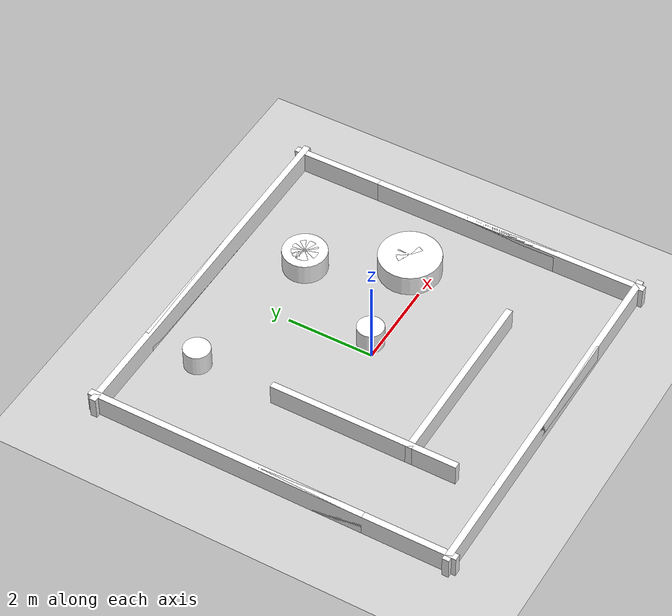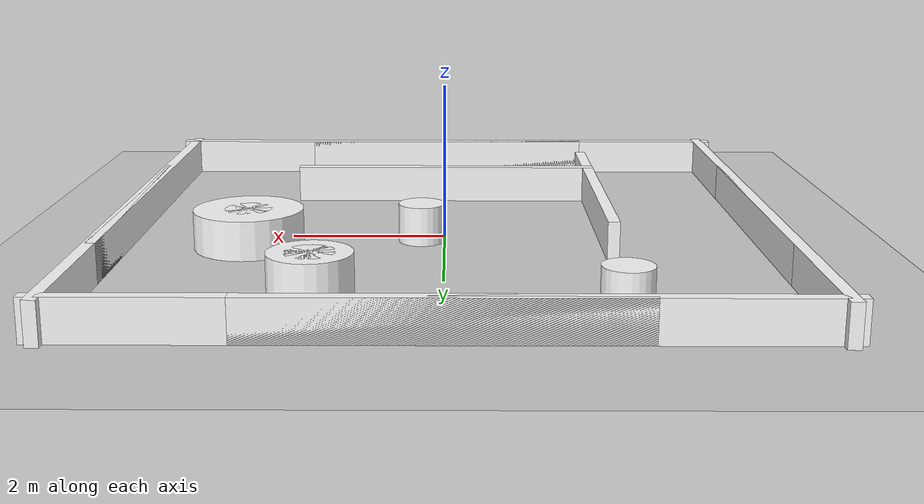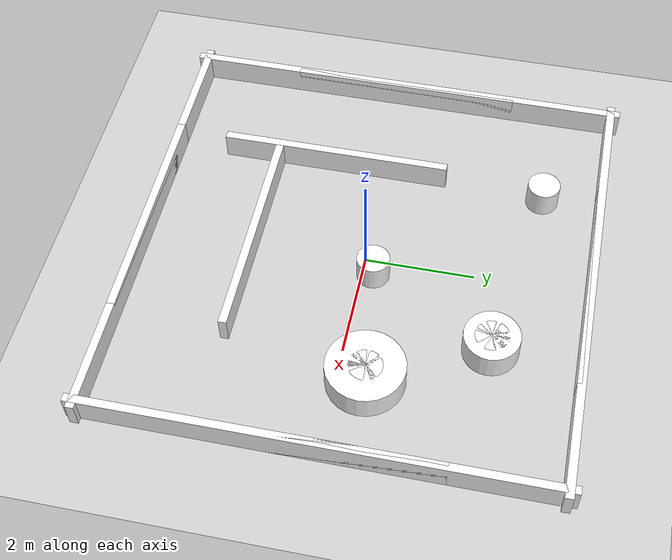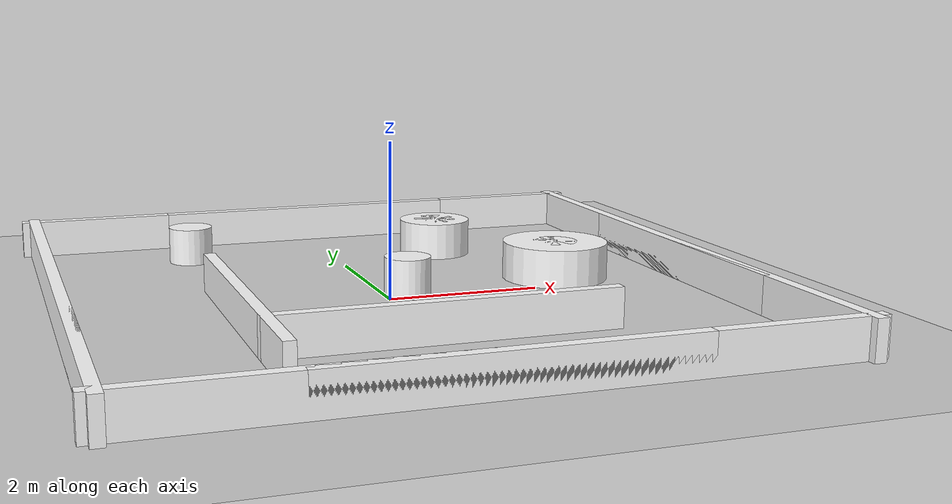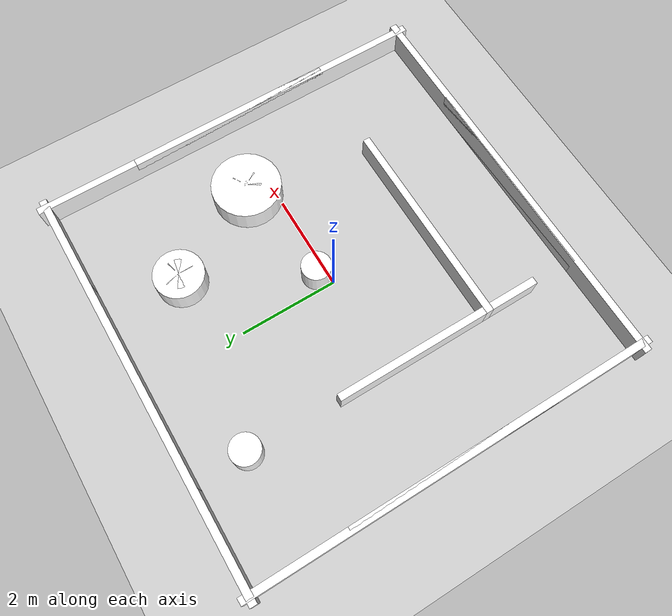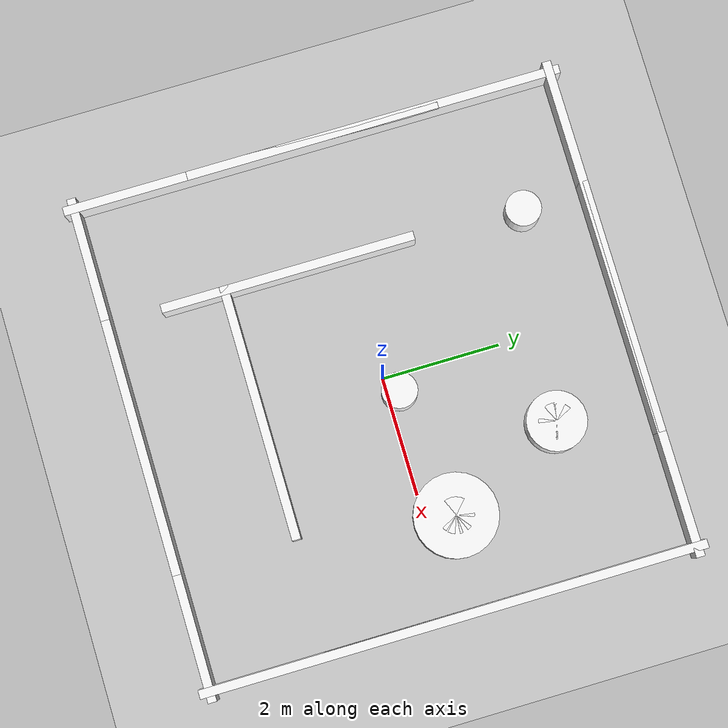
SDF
<sdf version='1.6'>
  <world name='default'>
    <!-- A global light source -->
    <include>
      <uri>model://sun</uri>
    </include>

    <!-- A ground plane -->
    <include>
      <uri>model://ground_plane</uri>
    </include>

    <physics type="ode">
      <real_time_update_rate>100.0</real_time_update_rate>
      <max_step_size>0.01</max_step_size>
      <real_time_factor>0.5</real_time_factor>
      <ode>
        <solver>
          <type>quick</type>
          <iters>150</iters>
          <precon_iters>0</precon_iters>
          <sor>1.400000</sor>
          <use_dynamic_moi_rescaling>1</use_dynamic_moi_rescaling>
        </solver>
        <constraints>
          <cfm>0.00001</cfm>
          <erp>0.2</erp>
          <contact_max_correcting_vel>2000.000000</contact_max_correcting_vel>
          <contact_surface_layer>0.01000</contact_surface_layer>
        </constraints>
      </ode>
    </physics>

    <!-- Load world -->
    <include>
      <uri>model://medium</uri>
    </include>

    <scene>
      <ambient>0.4 0.4 0.4 1</ambient>
      <background>0.7 0.7 0.7 1</background>
      <shadows>false</shadows>
    </scene>

    <gui fullscreen='0'>
      <camera name='user_camera'>
        <pose>0.8 0.0 12.0 0 1.5708 0</pose>
        <view_controller>orbit</view_controller>
      </camera>
    </gui>
  </world>
</sdf>

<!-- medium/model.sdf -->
<sdf version='1.6'>
  <model name='medium'>
    <link name='fixed'>
      <pose frame=''>0 0 0 0 -0 0</pose>
      <self_collide>0</self_collide>
      <kinematic>0</kinematic>
    </link>
    <link name='Cylinder_1'>
      <pose frame=''>0.3 0.2 0 0 -0 0</pose>
      <self_collide>0</self_collide>
      <kinematic>0</kinematic>
      <visual name='Cylinder_1_Visual'>
        <pose frame=''>0 0 0.25 0 -0 0</pose>
        <geometry>
          <cylinder>
            <radius>0.3</radius>
            <length>0.5</length>
          </cylinder>
        </geometry>
        <material>
          <ambient>1 1 1 1</ambient>
          <diffuse>1 1 1 1</diffuse>
          <specular>0 0 0 1</specular>
          <emissive>0 0 0 1</emissive>
          <script>
            <name>ModelPreview_1::Cylinder_1::Cylinder_1_Visual_MATERIAL_</name>
            <uri>__default__</uri>
          </script>
        </material>
        <cast_shadows>1</cast_shadows>
        <transparency>0</transparency>
      </visual>
      <collision name='Cylinder_1_Collision'>
        <laser_retro>0</laser_retro>
        <max_contacts>10</max_contacts>
        <pose frame=''>0 0 0.25 0 -0 0</pose>
        <geometry>
          <cylinder>
            <radius>0.3</radius>
            <length>0.5</length>
          </cylinder>
        </geometry>
        <surface>
          <friction>
            <ode>
              <mu>1</mu>
              <mu2>1</mu2>
              <fdir1>0 0 0</fdir1>
              <slip1>0</slip1>
              <slip2>0</slip2>
            </ode>
            <torsional>
              <coefficient>1</coefficient>
              <patch_radius>0</patch_radius>
              <surface_radius>0</surface_radius>
              <use_patch_radius>1</use_patch_radius>
              <ode>
                <slip>0</slip>
              </ode>
            </torsional>
          </friction>
          <bounce>
            <restitution_coefficient>0</restitution_coefficient>
            <threshold>1e+06</threshold>
          </bounce>
          <contact>
            <collide_without_contact>0</collide_without_contact>
            <collide_without_contact_bitmask>1</collide_without_contact_bitmask>
            <collide_bitmask>1</collide_bitmask>
            <ode>
              <soft_cfm>0</soft_cfm>
              <soft_erp>0.2</soft_erp>
              <kp>1e+13</kp>
              <kd>1</kd>
              <max_vel>0.01</max_vel>
              <min_depth>0</min_depth>
            </ode>
            <bullet>
              <split_impulse>1</split_impulse>
              <split_impulse_penetration_threshold>-0.01</split_impulse_penetration_threshold>
              <soft_cfm>0</soft_cfm>
              <soft_erp>0.2</soft_erp>
              <kp>1e+13</kp>
              <kd>1</kd>
            </bullet>
          </contact>
        </surface>
      </collision>
    </link>
    <link name='Cylinder_1_clone'>
      <pose frame=''>2.5 0.5 0 0 -0 0</pose>
      <self_collide>0</self_collide>
      <kinematic>0</kinematic>
      <gravity>1</gravity>
      <inertial>
        <mass>1</mass>
        <pose frame=''>0 0 0 0 -0 0</pose>
        <inertia>
          <ixx>1</ixx>
          <ixy>0</ixy>
          <ixz>0</ixz>
          <iyy>1</iyy>
          <iyz>0</iyz>
          <izz>1</izz>
        </inertia>
      </inertial>
      <visual name='Cylinder_1_Visual'>
        <pose frame=''>0 0 0.25 0 -0 0</pose>
        <geometry>
          <cylinder>
            <radius>0.7</radius>
            <length>0.5</length>
          </cylinder>
        </geometry>
        <material>
          <ambient>1 1 1 1</ambient>
          <diffuse>1 1 1 1</diffuse>
          <specular>0 0 0 1</specular>
          <emissive>0 0 0 1</emissive>
          <script>
            <name>ModelPreview_1::Cylinder_1::Cylinder_1_Visual_MATERIAL_</name>
            <uri>__default__</uri>
          </script>
          <shader type='pixel'>
            <normal_map>__default__</normal_map>
          </shader>
        </material>
        <cast_shadows>1</cast_shadows>
        <transparency>0</transparency>
      </visual>
      <visual name='ModelPreview_1::Cylinder_1_clone::visual_1'>
        <pose frame=''>0 0 0.25 0 -0 0</pose>
        <geometry>
          <cylinder>
            <radius>0.3</radius>
            <length>0.5</length>
          </cylinder>
        </geometry>
        <material>
          <ambient>1 1 1 1</ambient>
          <diffuse>1 1 1 1</diffuse>
          <specular>0 0 0 1</specular>
          <emissive>0 0 0 1</emissive>
          <script>
            <name>ModelPreview_1::Cylinder_1::Cylinder_1_Visual_MATERIAL_</name>
            <uri>__default__</uri>
          </script>
          <shader type='pixel'>
            <normal_map>__default__</normal_map>
          </shader>
        </material>
        <cast_shadows>1</cast_shadows>
        <transparency>0</transparency>
      </visual>
      <collision name='Cylinder_1_Collision'>
        <laser_retro>0</laser_retro>
        <max_contacts>10</max_contacts>
        <pose frame=''>0 0 0.25 0 -0 0</pose>
        <geometry>
          <cylinder>
            <radius>0.7</radius>
            <length>0.5</length>
          </cylinder>
        </geometry>
        <surface>
          <friction>
            <ode>
              <mu>1</mu>
              <mu2>1</mu2>
              <fdir1>0 0 0</fdir1>
              <slip1>0</slip1>
              <slip2>0</slip2>
            </ode>
            <torsional>
              <coefficient>1</coefficient>
              <patch_radius>0</patch_radius>
              <surface_radius>0</surface_radius>
              <use_patch_radius>1</use_patch_radius>
              <ode>
                <slip>0</slip>
              </ode>
            </torsional>
          </friction>
          <bounce>
            <restitution_coefficient>0</restitution_coefficient>
            <threshold>1e+06</threshold>
          </bounce>
          <contact>
            <collide_without_contact>0</collide_without_contact>
            <collide_without_contact_bitmask>1</collide_without_contact_bitmask>
            <collide_bitmask>1</collide_bitmask>
            <ode>
              <soft_cfm>0</soft_cfm>
              <soft_erp>0.2</soft_erp>
              <kp>1e+13</kp>
              <kd>1</kd>
              <max_vel>0.01</max_vel>
              <min_depth>0</min_depth>
            </ode>
            <bullet>
              <split_impulse>1</split_impulse>
              <split_impulse_penetration_threshold>-0.01</split_impulse_penetration_threshold>
              <soft_cfm>0</soft_cfm>
              <soft_erp>0.2</soft_erp>
              <kp>1e+13</kp>
              <kd>1</kd>
            </bullet>
          </contact>
        </surface>
      </collision>
    </link>
    <link name='Cylinder_1_clone_0'>
      <pose frame=''>1.5 2.5 0 0 -0 0</pose>
      <self_collide>0</self_collide>
      <kinematic>0</kinematic>
      <gravity>1</gravity>
      <inertial>
        <mass>1</mass>
        <pose frame=''>0 0 0 0 -0 0</pose>
        <inertia>
          <ixx>1</ixx>
          <ixy>0</ixy>
          <ixz>0</ixz>
          <iyy>1</iyy>
          <iyz>0</iyz>
          <izz>1</izz>
        </inertia>
      </inertial>
      <visual name='Cylinder_1_Visual'>
        <pose frame=''>0 0 0.25 0 -0 0</pose>
        <geometry>
          <cylinder>
            <radius>0.5</radius>
            <length>0.5</length>
          </cylinder>
        </geometry>
        <material>
          <ambient>1 1 1 1</ambient>
          <diffuse>1 1 1 1</diffuse>
          <specular>0 0 0 1</specular>
          <emissive>0 0 0 1</emissive>
          <script>
            <name>ModelPreview_1::Cylinder_1::Cylinder_1_Visual_MATERIAL_</name>
            <uri>__default__</uri>
          </script>
          <shader type='pixel'>
            <normal_map>__default__</normal_map>
          </shader>
        </material>
        <cast_shadows>1</cast_shadows>
        <transparency>0</transparency>
      </visual>
      <visual name='ModelPreview_1::Cylinder_1_clone_0::visual_1'>
        <pose frame=''>0 0 0.25 0 -0 0</pose>
        <geometry>
          <cylinder>
            <radius>0.3</radius>
            <length>0.5</length>
          </cylinder>
        </geometry>
        <material>
          <ambient>1 1 1 1</ambient>
          <diffuse>1 1 1 1</diffuse>
          <specular>0 0 0 1</specular>
          <emissive>0 0 0 1</emissive>
          <script>
            <name>ModelPreview_1::Cylinder_1::Cylinder_1_Visual_MATERIAL_</name>
            <uri>__default__</uri>
          </script>
          <shader type='pixel'>
            <normal_map>__default__</normal_map>
          </shader>
        </material>
        <cast_shadows>1</cast_shadows>
        <transparency>0</transparency>
      </visual>
      <collision name='Cylinder_1_Collision'>
        <laser_retro>0</laser_retro>
        <max_contacts>10</max_contacts>
        <pose frame=''>0 0 0.25 0 -0 0</pose>
        <geometry>
          <cylinder>
            <radius>0.5</radius>
            <length>0.5</length>
          </cylinder>
        </geometry>
        <surface>
          <friction>
            <ode>
              <mu>1</mu>
              <mu2>1</mu2>
              <fdir1>0 0 0</fdir1>
              <slip1>0</slip1>
              <slip2>0</slip2>
            </ode>
            <torsional>
              <coefficient>1</coefficient>
              <patch_radius>0</patch_radius>
              <surface_radius>0</surface_radius>
              <use_patch_radius>1</use_patch_radius>
              <ode>
                <slip>0</slip>
              </ode>
            </torsional>
          </friction>
          <bounce>
            <restitution_coefficient>0</restitution_coefficient>
            <threshold>1e+06</threshold>
          </bounce>
          <contact>
            <collide_without_contact>0</collide_without_contact>
            <collide_without_contact_bitmask>1</collide_without_contact_bitmask>
            <collide_bitmask>1</collide_bitmask>
            <ode>
              <soft_cfm>0</soft_cfm>
              <soft_erp>0.2</soft_erp>
              <kp>1e+13</kp>
              <kd>1</kd>
              <max_vel>0.01</max_vel>
              <min_depth>0</min_depth>
            </ode>
            <bullet>
              <split_impulse>1</split_impulse>
              <split_impulse_penetration_threshold>-0.01</split_impulse_penetration_threshold>
              <soft_cfm>0</soft_cfm>
              <soft_erp>0.2</soft_erp>
              <kp>1e+13</kp>
              <kd>1</kd>
            </bullet>
          </contact>
        </surface>
      </collision>
    </link>
    <link name='Cylinder_1_clone_0_clone'>
      <pose frame=''>-2 3 0 0 -0 0</pose>
      <self_collide>0</self_collide>
      <kinematic>0</kinematic>
      <visual name='Cylinder_1_Visual'>
        <pose frame=''>0 0 0.25 0 -0 0</pose>
        <geometry>
          <cylinder>
            <radius>0.3</radius>
            <length>0.5</length>
          </cylinder>
        </geometry>
        <material>
          <ambient>1 1 1 1</ambient>
          <diffuse>1 1 1 1</diffuse>
          <specular>0 0 0 1</specular>
          <emissive>0 0 0 1</emissive>
          <script>
            <name>ModelPreview_1::Cylinder_1::Cylinder_1_Visual_MATERIAL_</name>
            <uri>__default__</uri>
          </script>
          <shader type='pixel'/>
        </material>
        <cast_shadows>1</cast_shadows>
        <transparency>0</transparency>
      </visual>
      <collision name='Cylinder_1_Collision'>
        <laser_retro>0</laser_retro>
        <max_contacts>10</max_contacts>
        <pose frame=''>0 0 0.25 0 -0 0</pose>
        <geometry>
          <cylinder>
            <radius>0.3</radius>
            <length>0.5</length>
          </cylinder>
        </geometry>
        <surface>
          <friction>
            <ode>
              <mu>1</mu>
              <mu2>1</mu2>
              <fdir1>0 0 0</fdir1>
              <slip1>0</slip1>
              <slip2>0</slip2>
            </ode>
            <torsional>
              <coefficient>1</coefficient>
              <patch_radius>0</patch_radius>
              <surface_radius>0</surface_radius>
              <use_patch_radius>1</use_patch_radius>
              <ode>
                <slip>0</slip>
              </ode>
            </torsional>
          </friction>
          <bounce>
            <restitution_coefficient>0</restitution_coefficient>
            <threshold>1e+06</threshold>
          </bounce>
          <contact>
            <collide_without_contact>0</collide_without_contact>
            <collide_without_contact_bitmask>1</collide_without_contact_bitmask>
            <collide_bitmask>1</collide_bitmask>
            <ode>
              <soft_cfm>0</soft_cfm>
              <soft_erp>0.2</soft_erp>
              <kp>1e+13</kp>
              <kd>1</kd>
              <max_vel>0.01</max_vel>
              <min_depth>0</min_depth>
            </ode>
            <bullet>
              <split_impulse>1</split_impulse>
              <split_impulse_penetration_threshold>-0.01</split_impulse_penetration_threshold>
              <soft_cfm>0</soft_cfm>
              <soft_erp>0.2</soft_erp>
              <kp>1e+13</kp>
              <kd>1</kd>
            </bullet>
          </contact>
        </surface>
      </collision>
    </link>
    <link name='Wall_0_clone'>
      <pose frame=''>0 4.075 0 0 -0 0</pose>
      <self_collide>0</self_collide>
      <kinematic>0</kinematic>
      <gravity>1</gravity>
      <inertial>
        <mass>1</mass>
        <pose frame=''>0 0 0 0 -0 0</pose>
        <inertia>
          <ixx>1</ixx>
          <ixy>0</ixy>
          <ixz>0</ixz>
          <iyy>1</iyy>
          <iyz>0</iyz>
          <izz>1</izz>
        </inertia>
      </inertial>
      <visual name='ModelPreview_1::Wall_0_clone::visual_1'>
        <pose frame=''>0 0 0.25 0 -0 0</pose>
        <geometry>
          <box>
            <size>4.3 0.15 0.5</size>
          </box>
        </geometry>
        <material>
          <ambient>1 1 1 1</ambient>
          <diffuse>1 1 1 1</diffuse>
          <specular>0 0 0 1</specular>
          <emissive>0 0 0 1</emissive>
          <script>
            <name>ModelPreview_1::Wall_0::Wall_0_Visual_MATERIAL_</name>
            <uri>__default__</uri>
          </script>
          <shader type='pixel'>
            <normal_map>__default__</normal_map>
          </shader>
        </material>
        <cast_shadows>1</cast_shadows>
        <transparency>0</transparency>
      </visual>
      <visual name='Wall_0_Visual'>
        <pose frame=''>0 0 0.25 0 -0 0</pose>
        <geometry>
          <box>
            <size>8.5 0.15 0.5</size>
          </box>
        </geometry>
        <material>
          <ambient>1 1 1 1</ambient>
          <diffuse>1 1 1 1</diffuse>
          <specular>0 0 0 1</specular>
          <emissive>0 0 0 1</emissive>
          <script>
            <name>ModelPreview_1::Wall_0::Wall_0_Visual_MATERIAL_</name>
            <uri>__default__</uri>
          </script>
          <shader type='pixel'>
            <normal_map>__default__</normal_map>
          </shader>
        </material>
        <cast_shadows>1</cast_shadows>
        <transparency>0</transparency>
      </visual>
      <collision name='Wall_0_Collision'>
        <laser_retro>0</laser_retro>
        <max_contacts>10</max_contacts>
        <pose frame=''>0 0 0.25 0 -0 0</pose>
        <geometry>
          <box>
            <size>8.5 0.15 0.5</size>
          </box>
        </geometry>
        <surface>
          <friction>
            <ode>
              <mu>1</mu>
              <mu2>1</mu2>
              <fdir1>0 0 0</fdir1>
              <slip1>0</slip1>
              <slip2>0</slip2>
            </ode>
            <torsional>
              <coefficient>1</coefficient>
              <patch_radius>0</patch_radius>
              <surface_radius>0</surface_radius>
              <use_patch_radius>1</use_patch_radius>
              <ode>
                <slip>0</slip>
              </ode>
            </torsional>
          </friction>
          <bounce>
            <restitution_coefficient>0</restitution_coefficient>
            <threshold>1e+06</threshold>
          </bounce>
          <contact>
            <collide_without_contact>0</collide_without_contact>
            <collide_without_contact_bitmask>1</collide_without_contact_bitmask>
            <collide_bitmask>1</collide_bitmask>
            <ode>
              <soft_cfm>0</soft_cfm>
              <soft_erp>0.2</soft_erp>
              <kp>1e+13</kp>
              <kd>1</kd>
              <max_vel>0.01</max_vel>
              <min_depth>0</min_depth>
            </ode>
            <bullet>
              <split_impulse>1</split_impulse>
              <split_impulse_penetration_threshold>-0.01</split_impulse_penetration_threshold>
              <soft_cfm>0</soft_cfm>
              <soft_erp>0.2</soft_erp>
              <kp>1e+13</kp>
              <kd>1</kd>
            </bullet>
          </contact>
        </surface>
      </collision>
    </link>
    <link name='Wall_2'>
      <pose frame=''>-4.075 0 0 0 0 -1.5708</pose>
      <self_collide>0</self_collide>
      <kinematic>0</kinematic>
      <gravity>1</gravity>
      <inertial>
        <mass>1</mass>
        <pose frame=''>0 0 0 0 -0 0</pose>
        <inertia>
          <ixx>1</ixx>
          <ixy>0</ixy>
          <ixz>0</ixz>
          <iyy>1</iyy>
          <iyz>0</iyz>
          <izz>1</izz>
        </inertia>
      </inertial>
      <visual name='Wall_2_Visual'>
        <pose frame=''>0 0 0.25 0 -0 0</pose>
        <geometry>
          <box>
            <size>8.5 0.15 0.5</size>
          </box>
        </geometry>
        <material>
          <ambient>1 1 1 1</ambient>
          <diffuse>1 1 1 1</diffuse>
          <specular>0 0 0 1</specular>
          <emissive>0 0 0 1</emissive>
          <script>
            <name>ModelPreview_1::Wall_2::Wall_2_Visual_MATERIAL_</name>
            <uri>__default__</uri>
          </script>
          <shader type='vertex'>
            <normal_map>__default__</normal_map>
          </shader>
        </material>
        <cast_shadows>1</cast_shadows>
        <transparency>0</transparency>
      </visual>
      <visual name='ModelPreview_1::Wall_2::visual_1'>
        <pose frame=''>0 0 0.25 0 -0 0</pose>
        <geometry>
          <box>
            <size>4.3 0.15 0.5</size>
          </box>
        </geometry>
        <material>
          <ambient>1 1 1 1</ambient>
          <diffuse>1 1 1 1</diffuse>
          <specular>0 0 0 1</specular>
          <emissive>0 0 0 1</emissive>
          <script>
            <name>ModelPreview_1::Wall_2::Wall_2_Visual_MATERIAL_</name>
            <uri>__default__</uri>
          </script>
          <shader type='vertex'>
            <normal_map>__default__</normal_map>
          </shader>
        </material>
        <cast_shadows>1</cast_shadows>
        <transparency>0</transparency>
      </visual>
      <collision name='Wall_2_Collision'>
        <laser_retro>0</laser_retro>
        <max_contacts>10</max_contacts>
        <pose frame=''>0 0 0.25 0 -0 0</pose>
        <geometry>
          <box>
            <size>8.5 0.15 0.5</size>
          </box>
        </geometry>
        <surface>
          <friction>
            <ode>
              <mu>1</mu>
              <mu2>1</mu2>
              <fdir1>0 0 0</fdir1>
              <slip1>0</slip1>
              <slip2>0</slip2>
            </ode>
            <torsional>
              <coefficient>1</coefficient>
              <patch_radius>0</patch_radius>
              <surface_radius>0</surface_radius>
              <use_patch_radius>1</use_patch_radius>
              <ode>
                <slip>0</slip>
              </ode>
            </torsional>
          </friction>
          <bounce>
            <restitution_coefficient>0</restitution_coefficient>
            <threshold>1e+06</threshold>
          </bounce>
          <contact>
            <collide_without_contact>0</collide_without_contact>
            <collide_without_contact_bitmask>1</collide_without_contact_bitmask>
            <collide_bitmask>1</collide_bitmask>
            <ode>
              <soft_cfm>0</soft_cfm>
              <soft_erp>0.2</soft_erp>
              <kp>1e+13</kp>
              <kd>1</kd>
              <max_vel>0.01</max_vel>
              <min_depth>0</min_depth>
            </ode>
            <bullet>
              <split_impulse>1</split_impulse>
              <split_impulse_penetration_threshold>-0.01</split_impulse_penetration_threshold>
              <soft_cfm>0</soft_cfm>
              <soft_erp>0.2</soft_erp>
              <kp>1e+13</kp>
              <kd>1</kd>
            </bullet>
          </contact>
        </surface>
      </collision>
    </link>
    <link name='Wall_3'>
      <pose frame=''>0 -2.075 0 0 -0 0</pose>
      <self_collide>0</self_collide>
      <kinematic>0</kinematic>
      <gravity>1</gravity>
      <inertial>
        <mass>1</mass>
        <pose frame=''>0 0 0 0 -0 0</pose>
        <inertia>
          <ixx>1</ixx>
          <ixy>0</ixy>
          <ixz>0</ixz>
          <iyy>1</iyy>
          <iyz>0</iyz>
          <izz>1</izz>
        </inertia>
      </inertial>
      <visual name='Wall_3_Visual'>
        <pose frame=''>0 0 0.25 0 -0 0</pose>
        <geometry>
          <box>
            <size>4.3 0.15 0.5</size>
          </box>
        </geometry>
        <material>
          <ambient>1 1 1 1</ambient>
          <diffuse>1 1 1 1</diffuse>
          <specular>0 0 0 1</specular>
          <emissive>0 0 0 1</emissive>
          <script>
            <name>ModelPreview_1::Wall_3::Wall_3_Visual_MATERIAL_</name>
            <uri>__default__</uri>
          </script>
          <shader type='vertex'>
            <normal_map>__default__</normal_map>
          </shader>
        </material>
        <cast_shadows>1</cast_shadows>
        <transparency>0</transparency>
      </visual>
      <collision name='Wall_3_Collision'>
        <laser_retro>0</laser_retro>
        <max_contacts>10</max_contacts>
        <pose frame=''>0 0 0.25 0 -0 0</pose>
        <geometry>
          <box>
            <size>4.3 0.15 0.5</size>
          </box>
        </geometry>
        <surface>
          <friction>
            <ode>
              <mu>1</mu>
              <mu2>1</mu2>
              <fdir1>0 0 0</fdir1>
              <slip1>0</slip1>
              <slip2>0</slip2>
            </ode>
            <torsional>
              <coefficient>1</coefficient>
              <patch_radius>0</patch_radius>
              <surface_radius>0</surface_radius>
              <use_patch_radius>1</use_patch_radius>
              <ode>
                <slip>0</slip>
              </ode>
            </torsional>
          </friction>
          <bounce>
            <restitution_coefficient>0</restitution_coefficient>
            <threshold>1e+06</threshold>
          </bounce>
          <contact>
            <collide_without_contact>0</collide_without_contact>
            <collide_without_contact_bitmask>1</collide_without_contact_bitmask>
            <collide_bitmask>1</collide_bitmask>
            <ode>
              <soft_cfm>0</soft_cfm>
              <soft_erp>0.2</soft_erp>
              <kp>1e+13</kp>
              <kd>1</kd>
              <max_vel>0.01</max_vel>
              <min_depth>0</min_depth>
            </ode>
            <bullet>
              <split_impulse>1</split_impulse>
              <split_impulse_penetration_threshold>-0.01</split_impulse_penetration_threshold>
              <soft_cfm>0</soft_cfm>
              <soft_erp>0.2</soft_erp>
              <kp>1e+13</kp>
              <kd>1</kd>
            </bullet>
          </contact>
        </surface>
      </collision>
    </link>
    <link name='Wall_3_clone'>
      <pose frame=''>0 -4.075 0 0 -0 0</pose>
      <self_collide>0</self_collide>
      <kinematic>0</kinematic>
      <gravity>1</gravity>
      <inertial>
        <mass>1</mass>
        <pose frame=''>0 0 0 0 -0 0</pose>
        <inertia>
          <ixx>1</ixx>
          <ixy>0</ixy>
          <ixz>0</ixz>
          <iyy>1</iyy>
          <iyz>0</iyz>
          <izz>1</izz>
        </inertia>
      </inertial>
      <visual name='ModelPreview_1::Wall_3_clone::visual_1'>
        <pose frame=''>0 0 0.25 0 -0 0</pose>
        <geometry>
          <box>
            <size>4.3 0.15 0.5</size>
          </box>
        </geometry>
        <material>
          <ambient>1 1 1 1</ambient>
          <diffuse>1 1 1 1</diffuse>
          <specular>0 0 0 1</specular>
          <emissive>0 0 0 1</emissive>
          <script>
            <name>ModelPreview_1::Wall_3::Wall_3_Visual_MATERIAL_</name>
            <uri>__default__</uri>
          </script>
          <shader type='pixel'>
            <normal_map>__default__</normal_map>
          </shader>
        </material>
        <cast_shadows>1</cast_shadows>
        <transparency>0</transparency>
      </visual>
      <visual name='Wall_3_Visual'>
        <pose frame=''>0 0 0.25 0 -0 0</pose>
        <geometry>
          <box>
            <size>8.5 0.15 0.5</size>
          </box>
        </geometry>
        <material>
          <ambient>1 1 1 1</ambient>
          <diffuse>1 1 1 1</diffuse>
          <specular>0 0 0 1</specular>
          <emissive>0 0 0 1</emissive>
          <script>
            <name>ModelPreview_1::Wall_3::Wall_3_Visual_MATERIAL_</name>
            <uri>__default__</uri>
          </script>
          <shader type='pixel'>
            <normal_map>__default__</normal_map>
          </shader>
        </material>
        <cast_shadows>1</cast_shadows>
        <transparency>0</transparency>
      </visual>
      <visual name='ModelPreview_1::Wall_3_clone::visual_2'>
        <pose frame=''>0 0 0.25 0 -0 0</pose>
        <geometry>
          <box>
            <size>4.3 0.15 0.5</size>
          </box>
        </geometry>
        <material>
          <ambient>1 1 1 1</ambient>
          <diffuse>1 1 1 1</diffuse>
          <specular>0 0 0 1</specular>
          <emissive>0 0 0 1</emissive>
          <script>
            <name>ModelPreview_1::Wall_3::Wall_3_Visual_MATERIAL_</name>
            <uri>__default__</uri>
          </script>
          <shader type='pixel'>
            <normal_map>__default__</normal_map>
          </shader>
        </material>
        <cast_shadows>1</cast_shadows>
        <transparency>0</transparency>
      </visual>
      <collision name='Wall_3_Collision'>
        <laser_retro>0</laser_retro>
        <max_contacts>10</max_contacts>
        <pose frame=''>0 0 0.25 0 -0 0</pose>
        <geometry>
          <box>
            <size>8.5 0.15 0.5</size>
          </box>
        </geometry>
        <surface>
          <friction>
            <ode>
              <mu>1</mu>
              <mu2>1</mu2>
              <fdir1>0 0 0</fdir1>
              <slip1>0</slip1>
              <slip2>0</slip2>
            </ode>
            <torsional>
              <coefficient>1</coefficient>
              <patch_radius>0</patch_radius>
              <surface_radius>0</surface_radius>
              <use_patch_radius>1</use_patch_radius>
              <ode>
                <slip>0</slip>
              </ode>
            </torsional>
          </friction>
          <bounce>
            <restitution_coefficient>0</restitution_coefficient>
            <threshold>1e+06</threshold>
          </bounce>
          <contact>
            <collide_without_contact>0</collide_without_contact>
            <collide_without_contact_bitmask>1</collide_without_contact_bitmask>
            <collide_bitmask>1</collide_bitmask>
            <ode>
              <soft_cfm>0</soft_cfm>
              <soft_erp>0.2</soft_erp>
              <kp>1e+13</kp>
              <kd>1</kd>
              <max_vel>0.01</max_vel>
              <min_depth>0</min_depth>
            </ode>
            <bullet>
              <split_impulse>1</split_impulse>
              <split_impulse_penetration_threshold>-0.01</split_impulse_penetration_threshold>
              <soft_cfm>0</soft_cfm>
              <soft_erp>0.2</soft_erp>
              <kp>1e+13</kp>
              <kd>1</kd>
            </bullet>
          </contact>
        </surface>
      </collision>
    </link>
    <link name='Wall_4'>
      <pose frame=''>4.075 0 0 0 -0 1.5708</pose>
      <self_collide>0</self_collide>
      <kinematic>0</kinematic>
      <gravity>1</gravity>
      <inertial>
        <mass>1</mass>
        <pose frame=''>0 0 0 0 -0 0</pose>
        <inertia>
          <ixx>1</ixx>
          <ixy>0</ixy>
          <ixz>0</ixz>
          <iyy>1</iyy>
          <iyz>0</iyz>
          <izz>1</izz>
        </inertia>
      </inertial>
      <visual name='ModelPreview_1::Wall_4::visual_1'>
        <pose frame=''>0 0 0.25 0 -0 0</pose>
        <geometry>
          <box>
            <size>4.3 0.15 0.5</size>
          </box>
        </geometry>
        <material>
          <ambient>1 1 1 1</ambient>
          <diffuse>1 1 1 1</diffuse>
          <specular>0 0 0 1</specular>
          <emissive>0 0 0 1</emissive>
          <script>
            <name>ModelPreview_1::Wall_4::Wall_4_Visual_MATERIAL_</name>
            <uri>__default__</uri>
          </script>
          <shader type='vertex'>
            <normal_map>__default__</normal_map>
          </shader>
        </material>
        <cast_shadows>1</cast_shadows>
        <transparency>0</transparency>
      </visual>
      <visual name='Wall_4_Visual'>
        <pose frame=''>0 0 0.25 0 -0 0</pose>
        <geometry>
          <box>
            <size>8.5 0.15 0.5</size>
          </box>
        </geometry>
        <material>
          <ambient>1 1 1 1</ambient>
          <diffuse>1 1 1 1</diffuse>
          <specular>0 0 0 1</specular>
          <emissive>0 0 0 1</emissive>
          <script>
            <name>ModelPreview_1::Wall_4::Wall_4_Visual_MATERIAL_</name>
            <uri>__default__</uri>
          </script>
          <shader type='vertex'>
            <normal_map>__default__</normal_map>
          </shader>
        </material>
        <cast_shadows>1</cast_shadows>
        <transparency>0</transparency>
      </visual>
      <collision name='Wall_4_Collision'>
        <laser_retro>0</laser_retro>
        <max_contacts>10</max_contacts>
        <pose frame=''>0 0 0.25 0 -0 0</pose>
        <geometry>
          <box>
            <size>8.5 0.15 0.5</size>
          </box>
        </geometry>
        <surface>
          <friction>
            <ode>
              <mu>1</mu>
              <mu2>1</mu2>
              <fdir1>0 0 0</fdir1>
              <slip1>0</slip1>
              <slip2>0</slip2>
            </ode>
            <torsional>
              <coefficient>1</coefficient>
              <patch_radius>0</patch_radius>
              <surface_radius>0</surface_radius>
              <use_patch_radius>1</use_patch_radius>
              <ode>
                <slip>0</slip>
              </ode>
            </torsional>
          </friction>
          <bounce>
            <restitution_coefficient>0</restitution_coefficient>
            <threshold>1e+06</threshold>
          </bounce>
          <contact>
            <collide_without_contact>0</collide_without_contact>
            <collide_without_contact_bitmask>1</collide_without_contact_bitmask>
            <collide_bitmask>1</collide_bitmask>
            <ode>
              <soft_cfm>0</soft_cfm>
              <soft_erp>0.2</soft_erp>
              <kp>1e+13</kp>
              <kd>1</kd>
              <max_vel>0.01</max_vel>
              <min_depth>0</min_depth>
            </ode>
            <bullet>
              <split_impulse>1</split_impulse>
              <split_impulse_penetration_threshold>-0.01</split_impulse_penetration_threshold>
              <soft_cfm>0</soft_cfm>
              <soft_erp>0.2</soft_erp>
              <kp>1e+13</kp>
              <kd>1</kd>
            </bullet>
          </contact>
        </surface>
      </collision>
    </link>
    <link name='Wall_4_clone_0'>
      <pose frame=''>-2.075 -1 0 0 -0 1.5708</pose>
      <self_collide>0</self_collide>
      <kinematic>0</kinematic>
      <gravity>1</gravity>
      <inertial>
        <mass>1</mass>
        <pose frame=''>0 0 0 0 -0 0</pose>
        <inertia>
          <ixx>1</ixx>
          <ixy>0</ixy>
          <ixz>0</ixz>
          <iyy>1</iyy>
          <iyz>0</iyz>
          <izz>1</izz>
        </inertia>
      </inertial>
      <visual name='Wall_4_Visual'>
        <pose frame=''>0 0 0.25 0 -0 0</pose>
        <geometry>
          <box>
            <size>4.3 0.15 0.5</size>
          </box>
        </geometry>
        <material>
          <ambient>1 1 1 1</ambient>
          <diffuse>1 1 1 1</diffuse>
          <specular>0 0 0 1</specular>
          <emissive>0 0 0 1</emissive>
          <script>
            <name>ModelPreview_1::Wall_4::Wall_4_Visual_MATERIAL_</name>
            <uri>__default__</uri>
          </script>
          <shader type='pixel'>
            <normal_map>__default__</normal_map>
          </shader>
        </material>
        <cast_shadows>1</cast_shadows>
        <transparency>0</transparency>
      </visual>
      <collision name='Wall_4_Collision'>
        <laser_retro>0</laser_retro>
        <max_contacts>10</max_contacts>
        <pose frame=''>0 0 0.25 0 -0 0</pose>
        <geometry>
          <box>
            <size>4.3 0.15 0.5</size>
          </box>
        </geometry>
        <surface>
          <friction>
            <ode>
              <mu>1</mu>
              <mu2>1</mu2>
              <fdir1>0 0 0</fdir1>
              <slip1>0</slip1>
              <slip2>0</slip2>
            </ode>
            <torsional>
              <coefficient>1</coefficient>
              <patch_radius>0</patch_radius>
              <surface_radius>0</surface_radius>
              <use_patch_radius>1</use_patch_radius>
              <ode>
                <slip>0</slip>
              </ode>
            </torsional>
          </friction>
          <bounce>
            <restitution_coefficient>0</restitution_coefficient>
            <threshold>1e+06</threshold>
          </bounce>
          <contact>
            <collide_without_contact>0</collide_without_contact>
            <collide_without_contact_bitmask>1</collide_without_contact_bitmask>
            <collide_bitmask>1</collide_bitmask>
            <ode>
              <soft_cfm>0</soft_cfm>
              <soft_erp>0.2</soft_erp>
              <kp>1e+13</kp>
              <kd>1</kd>
              <max_vel>0.01</max_vel>
              <min_depth>0</min_depth>
            </ode>
            <bullet>
              <split_impulse>1</split_impulse>
              <split_impulse_penetration_threshold>-0.01</split_impulse_penetration_threshold>
              <soft_cfm>0</soft_cfm>
              <soft_erp>0.2</soft_erp>
              <kp>1e+13</kp>
              <kd>1</kd>
            </bullet>
          </contact>
        </surface>
      </collision>
    </link>
    <static>1</static>
    <allow_auto_disable>1</allow_auto_disable>
  </model>
</sdf>
